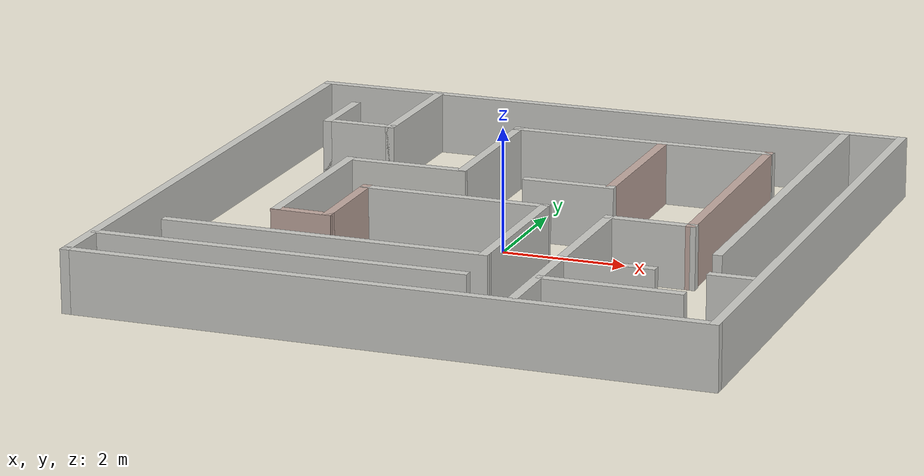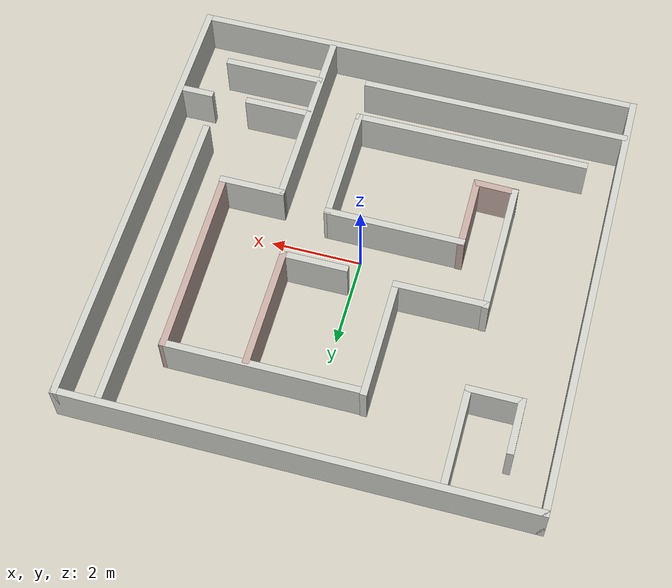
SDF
<?xml version='1.0'?>
<sdf version='1.7'>
  <model name='roni_map'>
    <pose>0 0 0 0 -0 0</pose>
    <link name='Wall_10'>
      <collision name='Wall_10_Collision'>
        <geometry>
          <box>
            <size>4.25025 0.15 1</size>
          </box>
        </geometry>
        <pose>0 0 0.5 0 -0 0</pose>
      </collision>
      <visual name='Wall_10_Visual'>
        <pose>0 0 0.5 0 -0 0</pose>
        <geometry>
          <box>
            <size>4.25025 0.15 1</size>
          </box>
        </geometry>
        <material>
          <script>
            <uri>file://media/materials/scripts/gazebo.material</uri>
            <name>Gazebo/CeilingTiled</name>
          </script>
          <ambient>0.760784 0.662745 0.627451 1</ambient>
        </material>
        <meta>
          <layer>0</layer>
        </meta>
      </visual>
      <pose>1.97148 -2.823 0 0 -0 1.5708</pose>
    </link>
    <link name='Wall_11'>
      <collision name='Wall_11_Collision'>
        <geometry>
          <box>
            <size>1.47348 0.15 1</size>
          </box>
        </geometry>
        <pose>0 0 0.5 0 -0 0</pose>
      </collision>
      <visual name='Wall_11_Visual'>
        <pose>0 0 0.5 0 -0 0</pose>
        <geometry>
          <box>
            <size>1.47348 0.15 1</size>
          </box>
        </geometry>
        <material>
          <script>
            <uri>file://media/materials/scripts/gazebo.material</uri>
            <name>Gazebo/CeilingTiled</name>
          </script>
          <ambient>0.760784 0.662745 0.627451 1</ambient>
        </material>
        <meta>
          <layer>0</layer>
        </meta>
      </visual>
      <pose>2.63322 -0.728178 0 0 -0 -0.000825</pose>
    </link>
    <link name='Wall_12'>
      <collision name='Wall_12_Collision'>
        <geometry>
          <box>
            <size>4.29624 0.15 1</size>
          </box>
        </geometry>
        <pose>0 0 0.5 0 -0 0</pose>
      </collision>
      <visual name='Wall_12_Visual'>
        <pose>0 0 0.5 0 -0 0</pose>
        <geometry>
          <box>
            <size>4.29624 0.15 1</size>
          </box>
        </geometry>
        <material>
          <script>
            <uri>file://media/materials/scripts/gazebo.material</uri>
            <name>Gazebo/Grey</name>
          </script>
          <ambient>0.760784 0.662745 0.627451 1</ambient>
        </material>
        <meta>
          <layer>0</layer>
        </meta>
      </visual>
      <pose>3.25957 1.34428 0 0 -0 1.58165</pose>
    </link>
    <link name='Wall_13'>
      <collision name='Wall_13_Collision'>
        <geometry>
          <box>
            <size>4.39638 0.15 1</size>
          </box>
        </geometry>
        <pose>0 0 0.5 0 -0 0</pose>
      </collision>
      <visual name='Wall_13_Visual'>
        <pose>0 0 0.5 0 -0 0</pose>
        <geometry>
          <box>
            <size>4.39638 0.15 1</size>
          </box>
        </geometry>
        <material>
          <script>
            <uri>file://media/materials/scripts/gazebo.material</uri>
            <name>Gazebo/CeilingTiled</name>
          </script>
          <ambient>0.760784 0.662745 0.627451 1</ambient>
        </material>
        <meta>
          <layer>0</layer>
        </meta>
      </visual>
      <pose>1.12712 3.41393 0 0 -0 -3.14002</pose>
    </link>
    <link name='Wall_14'>
      <collision name='Wall_14_Collision'>
        <geometry>
          <box>
            <size>2.705 0.15 1</size>
          </box>
        </geometry>
        <pose>0 0 0.5 0 -0 0</pose>
      </collision>
      <visual name='Wall_14_Visual'>
        <pose>0 0 0.5 0 -0 0</pose>
        <geometry>
          <box>
            <size>2.705 0.15 1</size>
          </box>
        </geometry>
        <material>
          <script>
            <uri>file://media/materials/scripts/gazebo.material</uri>
            <name>Gazebo/CeilingTiled</name>
          </script>
          <ambient>0.760784 0.662745 0.627451 1</ambient>
        </material>
        <meta>
          <layer>0</layer>
        </meta>
      </visual>
      <pose>-0.995717 2.1498 0 0 -0 -1.5708</pose>
    </link>
    <link name='Wall_15'>
      <collision name='Wall_15_Collision'>
        <geometry>
          <box>
            <size>2.06463 0.15 1</size>
          </box>
        </geometry>
        <pose>0 0 0.5 0 -0 0</pose>
      </collision>
      <visual name='Wall_15_Visual'>
        <pose>0 0 0.5 0 -0 0</pose>
        <geometry>
          <box>
            <size>2.06463 0.15 1</size>
          </box>
        </geometry>
        <material>
          <script>
            <uri>file://media/materials/scripts/gazebo.material</uri>
            <name>Gazebo/CeilingTiled</name>
          </script>
          <ambient>0.760784 0.662745 0.627451 1</ambient>
        </material>
        <meta>
          <layer>0</layer>
        </meta>
      </visual>
      <pose>-1.95301 0.850135 0 0 -0 -3.1359</pose>
    </link>
    <link name='Wall_16'>
      <collision name='Wall_16_Collision'>
        <geometry>
          <box>
            <size>3.045 0.15 1</size>
          </box>
        </geometry>
        <pose>0 0 0.5 0 -0 0</pose>
      </collision>
      <visual name='Wall_16_Visual'>
        <pose>0 0 0.5 0 -0 0</pose>
        <geometry>
          <box>
            <size>3.045 0.15 1</size>
          </box>
        </geometry>
        <material>
          <script>
            <uri>file://media/materials/scripts/gazebo.material</uri>
            <name>Gazebo/CeilingTiled</name>
          </script>
          <ambient>0.760784 0.662745 0.627451 1</ambient>
        </material>
        <meta>
          <layer>0</layer>
        </meta>
      </visual>
      <pose>-2.91031 -0.58828 0 0 -0 -1.5708</pose>
    </link>
    <link name='Wall_17'>
      <collision name='Wall_17_Collision'>
        <geometry>
          <box>
            <size>0.994594 0.15 1</size>
          </box>
        </geometry>
        <pose>0 0 0.5 0 -0 0</pose>
      </collision>
      <visual name='Wall_17_Visual'>
        <pose>0 0 0.5 0 -0 0</pose>
        <geometry>
          <box>
            <size>0.994594 0.15 1</size>
          </box>
        </geometry>
        <material>
          <script>
            <uri>file://media/materials/scripts/gazebo.material</uri>
            <name>Gazebo/Grey</name>
          </script>
          <ambient>0.760784 0.662745 0.627451 1</ambient>
        </material>
        <meta>
          <layer>0</layer>
        </meta>
      </visual>
      <pose>-2.48827 -2.05758 0 0 -0 -0.01722</pose>
    </link>
    <link name='Wall_18'>
      <collision name='Wall_18_Collision'>
        <geometry>
          <box>
            <size>1.70646 0.15 1</size>
          </box>
        </geometry>
        <pose>0 0 0.5 0 -0 0</pose>
      </collision>
      <visual name='Wall_18_Visual'>
        <pose>0 0 0.5 0 -0 0</pose>
        <geometry>
          <box>
            <size>1.70646 0.15 1</size>
          </box>
        </geometry>
        <material>
          <script>
            <uri>file://media/materials/scripts/gazebo.material</uri>
            <name>Gazebo/Grey</name>
          </script>
          <ambient>0.760784 0.662745 0.627451 1</ambient>
        </material>
        <meta>
          <layer>0</layer>
        </meta>
      </visual>
      <pose>-2.07349 -1.27212 0 0 -0 1.58014</pose>
    </link>
    <link name='Wall_19'>
      <collision name='Wall_19_Collision'>
        <geometry>
          <box>
            <size>3.09539 0.15 1</size>
          </box>
        </geometry>
        <pose>0 0 0.5 0 -0 0</pose>
      </collision>
      <visual name='Wall_19_Visual'>
        <pose>0 0 0.5 0 -0 0</pose>
        <geometry>
          <box>
            <size>3.09539 0.15 1</size>
          </box>
        </geometry>
        <material>
          <script>
            <uri>file://media/materials/scripts/gazebo.material</uri>
            <name>Gazebo/CeilingTiled</name>
          </script>
          <ambient>0.760784 0.662745 0.627451 1</ambient>
        </material>
        <meta>
          <layer>0</layer>
        </meta>
      </visual>
      <pose>-0.608078 -0.515196 0 0 -0 -0.004572</pose>
    </link>
    <link name='Wall_2'>
      <collision name='Wall_2_Collision'>
        <geometry>
          <box>
            <size>10.15 0.15 1</size>
          </box>
        </geometry>
        <pose>0 0 0.5 0 -0 0</pose>
      </collision>
      <visual name='Wall_2_Visual'>
        <pose>0 0 0.5 0 -0 0</pose>
        <geometry>
          <box>
            <size>10.15 0.15 1</size>
          </box>
        </geometry>
        <material>
          <script>
            <uri>file://media/materials/scripts/gazebo.material</uri>
            <name>Gazebo/CeilingTiled</name>
          </script>
          <ambient>0.760784 0.662745 0.627451 1</ambient>
        </material>
        <meta>
          <layer>0</layer>
        </meta>
      </visual>
      <pose>5 0 0 0 -0 -1.5708</pose>
    </link>
    <link name='Wall_20'>
      <collision name='Wall_20_Collision'>
        <geometry>
          <box>
            <size>2.75 0.15 1</size>
          </box>
        </geometry>
        <pose>0 0 0.5 0 -0 0</pose>
      </collision>
      <visual name='Wall_20_Visual'>
        <pose>0 0 0.5 0 -0 0</pose>
        <geometry>
          <box>
            <size>2.75 0.15 1</size>
          </box>
        </geometry>
        <material>
          <script>
            <uri>file://media/materials/scripts/gazebo.material</uri>
            <name>Gazebo/CeilingTiled</name>
          </script>
          <ambient>0.760784 0.662745 0.627451 1</ambient>
        </material>
        <meta>
          <layer>0</layer>
        </meta>
      </visual>
      <pose>0.8648 -1.82196 0 0 -0 -1.57064</pose>
    </link>
    <link name='Wall_21'>
      <collision name='Wall_21_Collision'>
        <geometry>
          <box>
            <size>5.25 0.15 1</size>
          </box>
        </geometry>
        <pose>0 0 0.5 0 -0 0</pose>
      </collision>
      <visual name='Wall_21_Visual'>
        <pose>0 0 0.5 0 -0 0</pose>
        <geometry>
          <box>
            <size>5.25 0.15 1</size>
          </box>
        </geometry>
        <material>
          <script>
            <uri>file://media/materials/scripts/gazebo.material</uri>
            <name>Gazebo/CeilingTiled</name>
          </script>
          <ambient>0.760784 0.662745 0.627451 1</ambient>
        </material>
        <meta>
          <layer>0</layer>
        </meta>
      </visual>
      <pose>-1.685 -3.122 0 0 -0 3.14159</pose>
    </link>
    <link name='Wall_23'>
      <collision name='Wall_23_Collision'>
        <geometry>
          <box>
            <size>1.25 0.15 1</size>
          </box>
        </geometry>
        <pose>0 0 0.5 0 -0 0</pose>
      </collision>
      <visual name='Wall_23_Visual'>
        <pose>0 0 0.5 0 -0 0</pose>
        <geometry>
          <box>
            <size>1.25 0.15 1</size>
          </box>
        </geometry>
        <material>
          <script>
            <uri>file://media/materials/scripts/gazebo.material</uri>
            <name>Gazebo/CeilingTiled</name>
          </script>
          <ambient>0.760784 0.662745 0.627451 1</ambient>
        </material>
        <meta>
          <layer>0</layer>
        </meta>
      </visual>
      <pose>-3.539 2.813 0 0 -0 3.14159</pose>
    </link>
    <link name='Wall_24'>
      <collision name='Wall_24_Collision'>
        <geometry>
          <box>
            <size>1.25 0.15 1</size>
          </box>
        </geometry>
        <pose>0 0 0.5 0 -0 0</pose>
      </collision>
      <visual name='Wall_24_Visual'>
        <pose>0 0 0.5 0 -0 0</pose>
        <geometry>
          <box>
            <size>1.25 0.15 1</size>
          </box>
        </geometry>
        <material>
          <script>
            <uri>file://media/materials/scripts/gazebo.material</uri>
            <name>Gazebo/CeilingTiled</name>
          </script>
          <ambient>0.760784 0.662745 0.627451 1</ambient>
        </material>
        <meta>
          <layer>0</layer>
        </meta>
      </visual>
      <pose>-4.089 3.363 0 0 -0 1.5708</pose>
    </link>
    <link name='Wall_26'>
      <collision name='Wall_26_Collision'>
        <geometry>
          <box>
            <size>2.75 0.15 1</size>
          </box>
        </geometry>
        <pose>0 0 0.5 0 -0 0</pose>
      </collision>
      <visual name='Wall_26_Visual'>
        <pose>0 0 0.5 0 -0 0</pose>
        <geometry>
          <box>
            <size>2.75 0.15 1</size>
          </box>
        </geometry>
        <material>
          <script>
            <uri>file://media/materials/scripts/gazebo.material</uri>
            <name>Gazebo/Grey</name>
          </script>
          <ambient>0.760784 0.662745 0.627451 1</ambient>
        </material>
        <meta>
          <layer>0</layer>
        </meta>
      </visual>
      <pose>1.485 2.061 0 0 -0 -1.5708</pose>
    </link>
    <link name='Wall_27'>
      <collision name='Wall_27_Collision'>
        <geometry>
          <box>
            <size>1.5 0.15 1</size>
          </box>
        </geometry>
        <pose>0 0 0.5 0 -0 0</pose>
      </collision>
      <visual name='Wall_27_Visual'>
        <pose>0 0 0.5 0 -0 0</pose>
        <geometry>
          <box>
            <size>1.5 0.15 1</size>
          </box>
        </geometry>
        <material>
          <script>
            <uri>file://media/materials/scripts/gazebo.material</uri>
            <name>Gazebo/CeilingTiled</name>
          </script>
          <ambient>0.760784 0.662745 0.627451 1</ambient>
        </material>
        <meta>
          <layer>0</layer>
        </meta>
      </visual>
      <pose>0.81 0.761 0 0 -0 3.14159</pose>
    </link>
    <link name='Wall_29'>
      <collision name='Wall_29_Collision'>
        <geometry>
          <box>
            <size>6 0.15 1</size>
          </box>
        </geometry>
        <pose>0 0 0.5 0 -0 0</pose>
      </collision>
      <visual name='Wall_29_Visual'>
        <pose>0 0 0.5 0 -0 0</pose>
        <geometry>
          <box>
            <size>6 0.15 1</size>
          </box>
        </geometry>
        <material>
          <script>
            <uri>file://media/materials/scripts/gazebo.material</uri>
            <name>Gazebo/CeilingTiled</name>
          </script>
          <ambient>0.760784 0.662745 0.627451 1</ambient>
        </material>
        <meta>
          <layer>0</layer>
        </meta>
      </visual>
      <pose>-2.024 -4.081 0 0 -0 0</pose>
    </link>
    <link name='Wall_3'>
      <collision name='Wall_3_Collision'>
        <geometry>
          <box>
            <size>10.15 0.15 1</size>
          </box>
        </geometry>
        <pose>0 0 0.5 0 -0 0</pose>
      </collision>
      <visual name='Wall_3_Visual'>
        <pose>0 0 0.5 0 -0 0</pose>
        <geometry>
          <box>
            <size>10.15 0.15 1</size>
          </box>
        </geometry>
        <material>
          <script>
            <uri>file://media/materials/scripts/gazebo.material</uri>
            <name>Gazebo/CeilingTiled</name>
          </script>
          <ambient>0.760784 0.662745 0.627451 1</ambient>
        </material>
        <meta>
          <layer>0</layer>
        </meta>
      </visual>
      <pose>0 -5 0 0 -0 3.14159</pose>
    </link>
    <link name='Wall_31'>
      <collision name='Wall_31_Collision'>
        <geometry>
          <box>
            <size>1.5 0.15 1</size>
          </box>
        </geometry>
        <pose>0 0 0.5 0 -0 0</pose>
      </collision>
      <visual name='Wall_31_Visual'>
        <pose>0 0 0.5 0 -0 0</pose>
        <geometry>
          <box>
            <size>1.5 0.15 1</size>
          </box>
        </geometry>
        <material>
          <script>
            <uri>file://media/materials/scripts/gazebo.material</uri>
            <name>Gazebo/CeilingTiled</name>
          </script>
          <ambient>0.760784 0.662745 0.627451 1</ambient>
        </material>
        <meta>
          <layer>0</layer>
        </meta>
      </visual>
      <pose>2.698 -2.915 0 0 -0 0</pose>
    </link>
    <link name='Wall_33'>
      <collision name='Wall_33_Collision'>
        <geometry>
          <box>
            <size>0.75 0.15 1</size>
          </box>
        </geometry>
        <pose>0 0 0.5 0 -0 0</pose>
      </collision>
      <visual name='Wall_33_Visual'>
        <pose>0 0 0.5 0 -0 0</pose>
        <geometry>
          <box>
            <size>0.75 0.15 1</size>
          </box>
        </geometry>
        <material>
          <script>
            <uri>file://media/materials/scripts/gazebo.material</uri>
            <name>Gazebo/CeilingTiled</name>
          </script>
          <ambient>0.760784 0.662745 0.627451 1</ambient>
        </material>
        <meta>
          <layer>0</layer>
        </meta>
      </visual>
      <pose>4.592 -2.871 0 0 -0 3.14159</pose>
    </link>
    <link name='Wall_35'>
      <collision name='Wall_35_Collision'>
        <geometry>
          <box>
            <size>7 0.15 1</size>
          </box>
        </geometry>
        <pose>0 0 0.5 0 -0 0</pose>
      </collision>
      <visual name='Wall_35_Visual'>
        <pose>0 0 0.5 0 -0 0</pose>
        <geometry>
          <box>
            <size>7 0.15 1</size>
          </box>
        </geometry>
        <material>
          <script>
            <uri>file://media/materials/scripts/gazebo.material</uri>
            <name>Gazebo/CeilingTiled</name>
          </script>
          <ambient>0.760784 0.662745 0.627451 1</ambient>
        </material>
        <meta>
          <layer>0</layer>
        </meta>
      </visual>
      <pose>4.085 1.496 0 0 -0 1.5708</pose>
    </link>
    <link name='Wall_37'>
      <collision name='Wall_37_Collision'>
        <geometry>
          <box>
            <size>2.25 0.15 1</size>
          </box>
        </geometry>
        <pose>0 0 0.5 0 -0 0</pose>
      </collision>
      <visual name='Wall_37_Visual'>
        <pose>0 0 0.5 0 -0 0</pose>
        <geometry>
          <box>
            <size>2.25 0.15 1</size>
          </box>
        </geometry>
        <material>
          <script>
            <uri>file://media/materials/scripts/gazebo.material</uri>
            <name>Gazebo/CeilingTiled</name>
          </script>
          <ambient>0.760784 0.662745 0.627451 1</ambient>
        </material>
        <meta>
          <layer>0</layer>
        </meta>
      </visual>
      <pose>3.073 -3.879 0 0 -0 0</pose>
    </link>
    <link name='Wall_4'>
      <collision name='Wall_4_Collision'>
        <geometry>
          <box>
            <size>10.15 0.15 1</size>
          </box>
        </geometry>
        <pose>0 0 0.5 0 -0 0</pose>
      </collision>
      <visual name='Wall_4_Visual'>
        <pose>0 0 0.5 0 -0 0</pose>
        <geometry>
          <box>
            <size>10.15 0.15 1</size>
          </box>
        </geometry>
        <material>
          <script>
            <uri>file://media/materials/scripts/gazebo.material</uri>
            <name>Gazebo/CeilingTiled</name>
          </script>
          <ambient>0.760784 0.662745 0.627451 1</ambient>
        </material>
        <meta>
          <layer>0</layer>
        </meta>
      </visual>
      <pose>-5 0 0 0 -0 1.5708</pose>
    </link>
    <link name='Wall_5'>
      <collision name='Wall_5_Collision'>
        <geometry>
          <box>
            <size>10.15 0.15 1</size>
          </box>
        </geometry>
        <pose>0 0 0.5 0 -0 0</pose>
      </collision>
      <visual name='Wall_5_Visual'>
        <pose>0 0 0.5 0 -0 0</pose>
        <geometry>
          <box>
            <size>10.15 0.15 1</size>
          </box>
        </geometry>
        <material>
          <script>
            <uri>file://media/materials/scripts/gazebo.material</uri>
            <name>Gazebo/CeilingTiled</name>
          </script>
          <ambient>0.760784 0.662745 0.627451 1</ambient>
        </material>
        <meta>
          <layer>0</layer>
        </meta>
      </visual>
      <pose>0 5 0 0 -0 0</pose>
    </link>
    <link name='Wall_7'>
      <collision name='Wall_7_Collision'>
        <geometry>
          <box>
            <size>2.25 0.15 1</size>
          </box>
        </geometry>
        <pose>0 0 0.5 0 -0 0</pose>
      </collision>
      <visual name='Wall_7_Visual'>
        <pose>0 0 0.5 0 -0 0</pose>
        <geometry>
          <box>
            <size>2.25 0.15 1</size>
          </box>
        </geometry>
        <material>
          <script>
            <uri>file://media/materials/scripts/gazebo.material</uri>
            <name>Gazebo/CeilingTiled</name>
          </script>
          <ambient>0.760784 0.662745 0.627451 1</ambient>
        </material>
        <meta>
          <layer>0</layer>
        </meta>
      </visual>
      <pose>-2.989 3.863 0 0 -0 1.5708</pose>
    </link>
    <static>1</static>
  </model>
</sdf>
